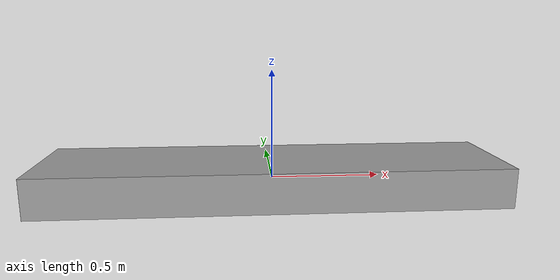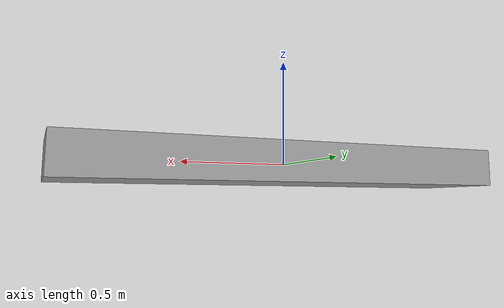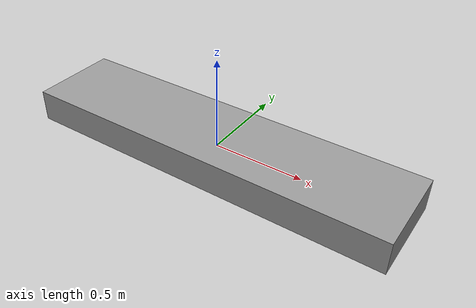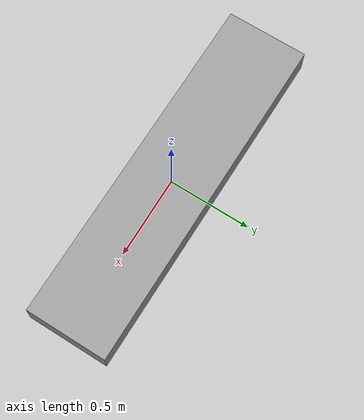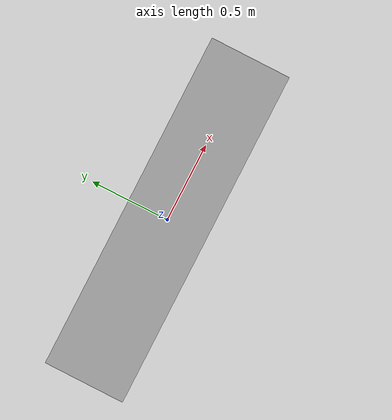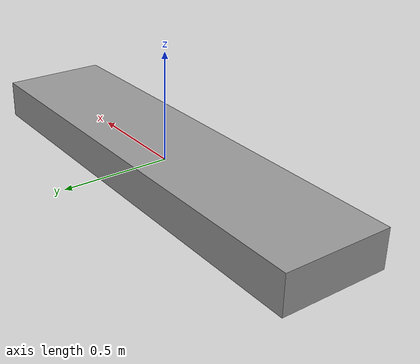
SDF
<sdf version="1.4">
  <model name="box2">
    <static>1</static>
    <link name="link">
      <collision name="colision">
        <pose>0 0 0 0 0 0</pose>
        <geometry>
          <box>
            <size>2.1 0.6 0.01</size>
          </box>
        </geometry>
        <surface>
          <bounce />
          <friction>
            <ode />
          </friction>
          <contact>
            <ode />
          </contact>
        </surface>
      </collision>

      <visual name="visual">
        <pose>0 0 0 0 0 0</pose>
        <geometry>
          <box>
            <size>2.1 0.5 0.18</size>
          </box>
        </geometry>
        <material>
          <script>
            <uri>file://media/materials/scripts/gazebo.material</uri>
            <name>Gazebo/Grey</name>
          </script>
        </material>
      </visual>
    </link>
  </model>
</sdf>
